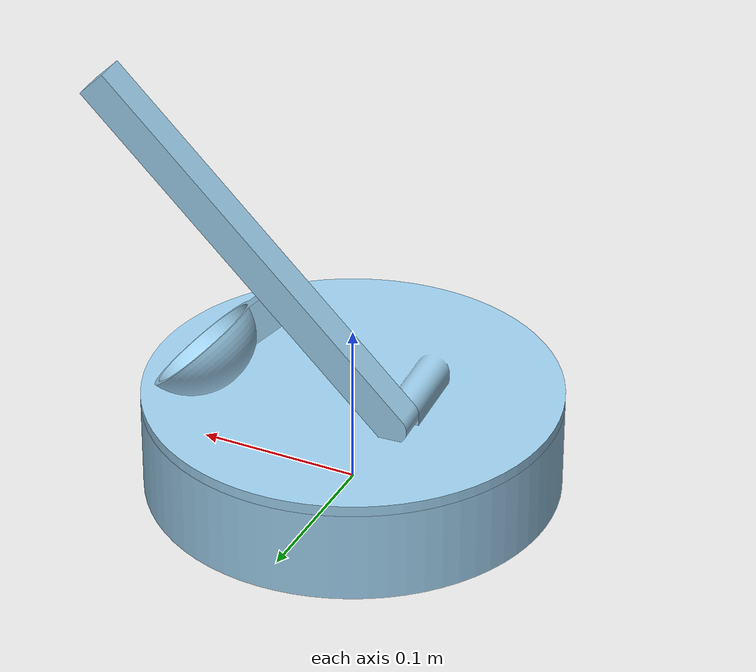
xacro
<?xml version="1.0"?>
<robot xmlns:xacro="http://www.ros.org/wiki/xacro" name="ball_butler">
    <xacro:arg name="initial_positions_file" default="initial_positions.yaml" />

    <!-- Import ball_butler urdf file -->
    <xacro:include filename="$(find ball_butler_support)/urdf/robot.urdf" />

    <!-- Import control_xacro -->
    <xacro:include filename="ball_butler.ros2_control.xacro" />

    <xacro:ball_butler_ros2_control name="FakeSystem" initial_positions_file="$(arg initial_positions_file)"/>

</robot>

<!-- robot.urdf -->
<!-- Generated using onshape-to-robot -->
<!-- Onshape https //cad.onshape.com/documents/3dc4b4763b6718c02dc70986/w/79ac6331923ba2fd9582710d/e/a51fdc22539c66f5617fdfdf -->
<robot xmlns:xacro="http://ros.org/wiki/xacro" name="ball_butler">
  <!-- Link base -->
  <link name="base">
    <inertial>
      <origin xyz="0 0 0" rpy="0 0 0"/>
      <mass value="1e-09"/>
      <inertia ixx="1e-09" ixy="0" ixz="0" iyy="1e-09" iyz="0" izz="1e-09"/>
    </inertial>
    <!-- Part base -->
    <visual>
      <origin xyz="0 0 0" rpy="0 0 0"/>
      <geometry>
			  <mesh filename="package://ball_butler_support/mesh/base.stl"/>
      </geometry>
      <material name="base_material">
        <color rgba="0.615686 0.811765 0.929412 1"/>
      </material>
    </visual>
    <collision>
      <origin xyz="0 0 0" rpy="0 0 0"/>
      <geometry>
        <mesh filename="package://ball_butler_support/mesh/base.stl"/>
      </geometry>
    </collision>
  </link>
  <!-- Link lid -->
  <link name="lid">
    <inertial>
      <origin xyz="0 0 0" rpy="0 0 0"/>
      <mass value="1e-09"/>
      <inertia ixx="1e-09" ixy="0" ixz="0" iyy="1e-09" iyz="0" izz="1e-09"/>
    </inertial>
    <!-- Part lid -->
    <visual>
      <origin xyz="0 0 0.025" rpy="3.14159 -0 0"/>
      <geometry>
        <mesh filename="package://ball_butler_support/mesh/lid.stl"/>
      </geometry>
      <material name="lid_material">
        <color rgba="0.615686 0.811765 0.929412 1"/>
      </material>
    </visual>
    <collision>
      <origin xyz="0 0 0.025" rpy="3.14159 -0 0"/>
      <geometry>
        <mesh filename="package://ball_butler_support/mesh/lid.stl"/>
      </geometry>
    </collision>
  </link>
  <!-- Link pitch -->
  <link name="pitch">
    <inertial>
      <origin xyz="0 0 0" rpy="0 0 0"/>
      <mass value="1e-09"/>
      <inertia ixx="1e-09" ixy="0" ixz="0" iyy="1e-09" iyz="0" izz="1e-09"/>
    </inertial>
    <!-- Part pitch -->
    <visual>
      <origin xyz="0 0 0" rpy="-1.5708 0 0"/>
      <geometry>
        <mesh filename="package://ball_butler_support/mesh/pitch.stl"/>
      </geometry>
      <material name="pitch_material">
        <color rgba="0.615686 0.811765 0.929412 1"/>
      </material>
    </visual>
    <collision>
      <origin xyz="0 0 0" rpy="-1.5708 0 0"/>
      <geometry>
        <mesh filename="package://ball_butler_support/mesh/pitch.stl"/>
      </geometry>
    </collision>
  </link>
  <!-- Link hand -->
  <link name="hand">
    <inertial>
      <origin xyz="0 0 0" rpy="0 0 0"/>
      <mass value="1e-09"/>
      <inertia ixx="1e-09" ixy="0" ixz="0" iyy="1e-09" iyz="0" izz="1e-09"/>
    </inertial>
    <!-- Part hand -->
    <visual>
      <origin xyz="0.01 0 0" rpy="-3.14159 0 0"/>
      <geometry>
        <mesh filename="package://ball_butler_support/mesh/hand.stl"/>
      </geometry>
      <material name="hand_material">
        <color rgba="0.615686 0.811765 0.929412 1"/>
      </material>
    </visual>
    <collision>
      <origin xyz="0.01 0 0" rpy="-3.14159 0 0"/>
      <geometry>
        <mesh filename="package://ball_butler_support/mesh/hand.stl"/>
      </geometry>
    </collision>
  </link>
  <!-- Joint from pitch to hand -->
  <joint name="throw" type="prismatic">
    <origin xyz="-0.01 0.0949984 0" rpy="1.5708 -1.5708 0"/>
    <parent link="pitch"/>
    <child link="hand"/>
    <axis xyz="0 0 1"/>
    <limit effort="10" velocity="10" lower="-1" upper="1"/>
  </joint>
  <!-- Joint from lid to pitch -->
  <joint name="pitch" type="revolute">
    <origin xyz="0.041 0.025 -0.0135" rpy="-1.5708 0.771723 0"/>
    <parent link="lid"/>
    <child link="pitch"/>
    <axis xyz="0 0 1"/>
    <limit effort="10" velocity="10" lower="-3.141592653589793" upper="3.141592653589793"/>
  </joint>
  <!-- Joint from base to lid -->
  <joint name="yaw" type="revolute">
    <origin xyz="0 0 0.0565" rpy="3.14159 -0 -3.07134"/>
    <parent link="base"/>
    <child link="lid"/>
    <axis xyz="0 0 1"/>
    <limit effort="10" velocity="10" lower="-3.141592653589793" upper="3.141592653589793"/>
  </joint>
</robot>
